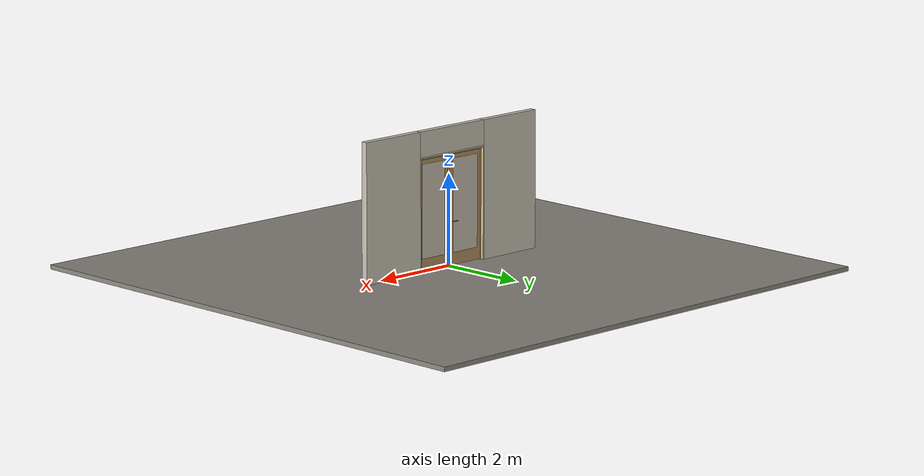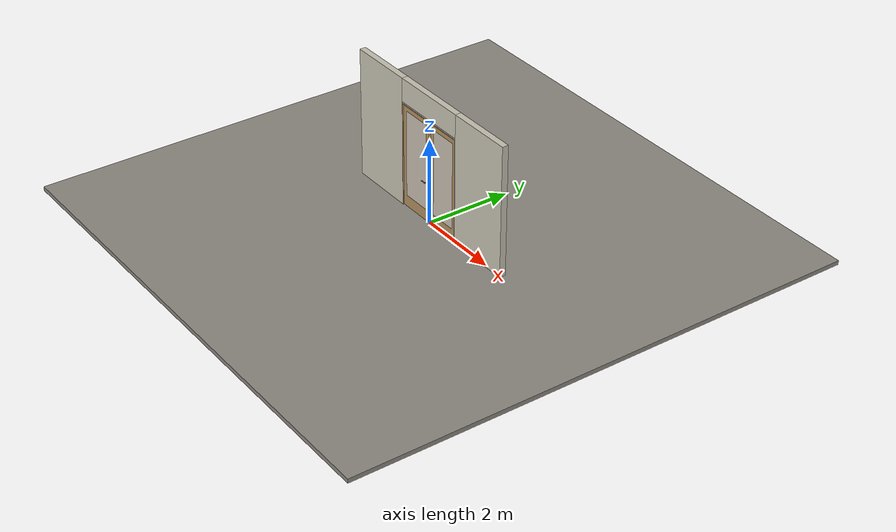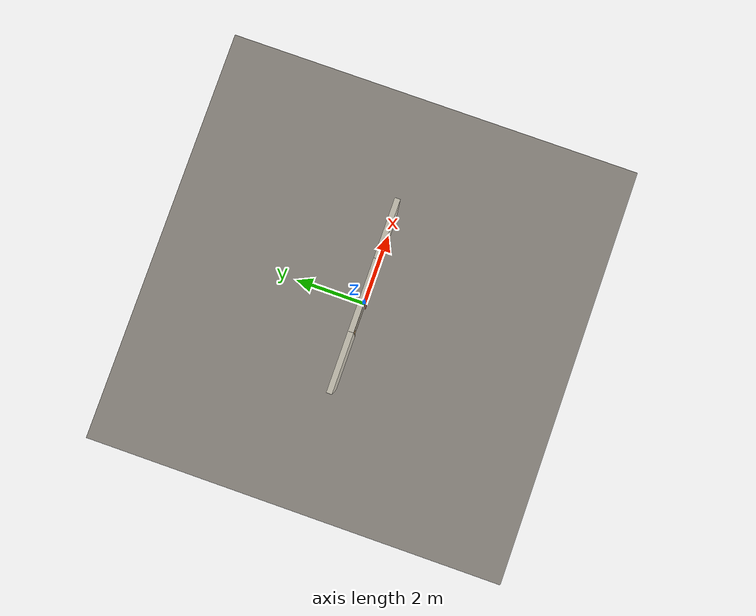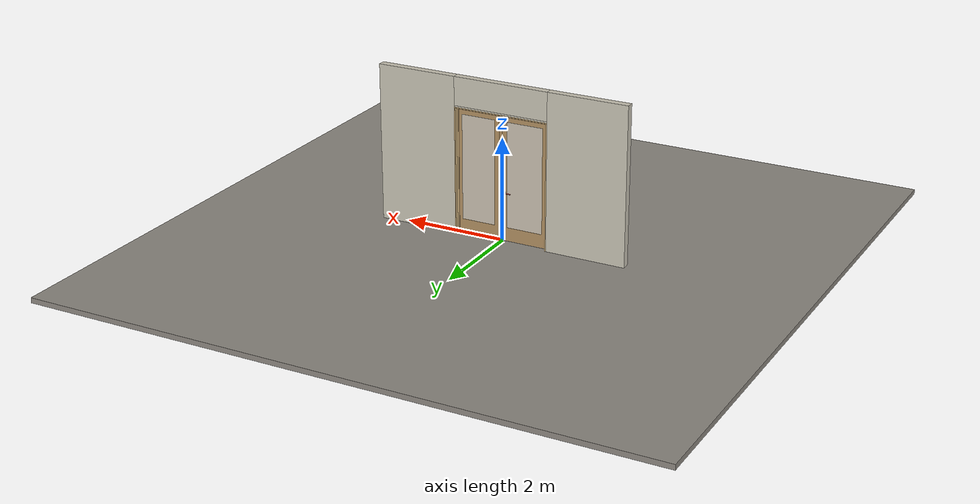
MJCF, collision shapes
<?xml version="1.0" ?>
<mujoco model="db0682_swing_double_minimal">
  <compiler angle="radian" meshdir="../../hardware" texturedir="../../textures" autolimits="true" inertiafromgeom="false"/>
  <option timestep="0.002" integrator="implicitfast" cone="elliptic" impratio="10" noslip_iterations="3">
    <flag multiccd="enable"/>
  </option>
  <size memory="16M"/>
  <default>
    <geom condim="4" solref="0.005 1" solimp="0.95 0.99 0.001"/>
    <joint solreflimit="0.005 1" solimplimit="0.95 0.99 0.001"/>
    <tendon solreflimit="0.005 1"/>
    <equality solref="0.002 1"/>
  </default>
  <visual>
    <headlight ambient="0.4 0.4 0.4" diffuse="0.7 0.7 0.7" specular="0.2 0.2 0.2"/>
    <quality shadowsize="4096"/>
    <map znear="0.01" zfar="60"/>
  </visual>
  <asset>
    <mesh name="lever_f913fc5b7b" file="lever_f913fc5b7b.obj"/>
    <material name="mat_floor" rgba="0.55 0.53 0.5 1" specular="0.2" shininess="0.15" reflectance="0"/>
    <material name="mat_wall" rgba="0.78 0.76 0.7 1" specular="0.2" shininess="0.1" reflectance="0"/>
    <material name="mat_leaf_a" rgba="0.686 0.557 0.377 1" specular="0.2" shininess="0.45" reflectance="0"/>
    <material name="mat_glass" rgba="0.9 0.93 0.95 0.6" specular="0.2" shininess="0.5" reflectance="0.1"/>
    <material name="mat_hinge" rgba="0.65 0.66 0.68 1" specular="0.74" shininess="0.5" reflectance="0.36"/>
    <material name="mat_op_stainless" rgba="0.75 0.76 0.77 1" specular="0.8" shininess="0.65" reflectance="0.4"/>
    <material name="mat_trim" rgba="0.85 0.66 0.3 1" specular="0.8" shininess="0.75" reflectance="0.4"/>
    <material name="mat_bolt" rgba="0.85 0.66 0.3 1" specular="0.8" shininess="0.75" reflectance="0.4"/>
    <material name="mat_deadbolt" rgba="0.85 0.66 0.3 1" specular="0.8" shininess="0.75" reflectance="0.4"/>
    <material name="mat_leaf_b" rgba="0.686 0.557 0.377 1" specular="0.2" shininess="0.45" reflectance="0"/>
    <material name="mat_frame" rgba="0.82 0.7 0.5 1" specular="0.2" shininess="0.45" reflectance="0"/>
    <texture name="skybox" type="skybox" builtin="gradient" rgb1="0.6 0.7 0.85" rgb2="0.9 0.92 0.95" width="256" height="256"/>
  </asset>
  <worldbody>
    <light name="sun" pos="1.5 -2.5 4" dir="-0.3 0.5 -0.8" directional="true" diffuse="0.8 0.8 0.8" specular="0.3 0.3 0.3" castshadow="true"/>
    <light name="fill" pos="-1.5 2.5 3" dir="0.3 -0.5 -0.7" directional="true" diffuse="0.35 0.35 0.4" castshadow="false"/>
    <camera name="robot_view" pos="0 -2.892313 2.043887" xyaxes="1 0 0 0 0.26963 0.962964" fovy="52"/>
    <camera name="far_view" pos="0 2.953313 2.043887" xyaxes="-1 0 0 0 -0.26963 0.962964" fovy="52"/>
    <camera name="iso" pos="-2.221337 -2.424663 2.511538" xyaxes="0.741536 -0.670913 0 0.242917 0.268487 0.932151" fovy="46"/>
    <camera name="detail_handle" pos="0.0045 -0.877 1.245" xyaxes="0.97561 0.219512 0 -0.070934 0.315262 0.94635" fovy="38"/>
    <geom name="floor" type="box" size="6 6 0.05" pos="0 0 -0.05" material="mat_floor" group="0" contype="1" conaffinity="1" friction="0.8 0.005 0.0001" density="2400"/>
    <geom name="wall_left" type="box" size="0.78125 0.0725 1.5255" pos="-1.71875 0.0305 1.5255" material="mat_wall" group="0" contype="1" conaffinity="1" friction="0.6 0.005 0.0001" density="800"/>
    <geom name="wall_right" type="box" size="0.78125 0.0725 1.5255" pos="1.71875 0.0305 1.5255" material="mat_wall" group="0" contype="1" conaffinity="1" friction="0.6 0.005 0.0001" density="800"/>
    <geom name="wall_header" type="box" size="0.9375 0.0725 0.2755" pos="0 0.0305 2.7755" material="mat_wall" group="0" contype="1" conaffinity="1" friction="0.6 0.005 0.0001" density="800"/>
    <geom name="jamb_l" type="box" size="0.0095 0.0725 1.2255" pos="-0.928 0.0305 1.2255" material="mat_frame" group="0" contype="1" conaffinity="1" friction="0.6 0.005 0.0001" density="300"/>
    <geom name="jamb_r" type="box" size="0.0095 0.0725 1.2255" pos="0.928 0.0305 1.2255" material="mat_frame" group="0" contype="1" conaffinity="1" friction="0.6 0.005 0.0001" density="300"/>
    <geom name="jamb_head" type="box" size="0.9375 0.0725 0.0095" pos="0 0.0305 2.4605" material="mat_frame" group="0" contype="1" conaffinity="1" friction="0.6 0.005 0.0001" density="300"/>
    <geom name="head_stud" type="box" size="0.9375 0.0725 0.015" pos="0 0.0305 2.485" material="mat_wall" group="0" contype="1" conaffinity="1" friction="0.6 0.005 0.0001" density="500"/>
    <geom name="stop_l" type="box" size="0.015 0.006 1.2255" pos="-0.9035 0.0285 1.2255" material="mat_frame" group="0" contype="1" conaffinity="1" friction="0.6 0.005 0.0001" density="300"/>
    <geom name="stop_r" type="box" size="0.015 0.006 1.2255" pos="0.9035 0.0285 1.2255" material="mat_frame" group="0" contype="1" conaffinity="1" friction="0.6 0.005 0.0001" density="300"/>
    <geom name="stop_head" type="box" size="0.9185 0.006 0.015" pos="0 0.0285 2.436" material="mat_frame" group="0" contype="1" conaffinity="1" friction="0.6 0.005 0.0001" density="300"/>
    <site name="approach_point" pos="0 -1.5 0" quat="1 0 0 0" size="0.05" rgba="0.2 0.9 0.2 0.5" group="4"/>
    <site name="goal_point" pos="0 1.5 0" quat="1 0 0 0" size="0.05" rgba="0.2 0.9 0.2 0.5" group="4"/>
    <site name="door_plane_center" pos="0 0 1.2255" quat="1 0 0 0" size="0.02" rgba="0.2 0.9 0.2 0.5" group="4"/>
    <site name="approach_point_2" pos="0 -1.5 0" quat="1 0 0 0" size="0.05" rgba="0.2 0.9 0.2 0.5" group="4"/>
    <site name="goal_point_2" pos="0 1.5 0" quat="1 0 0 0" size="0.05" rgba="0.2 0.9 0.2 0.5" group="4"/>
    <site name="door_plane_center_2" pos="0 0 1.2255" quat="1 0 0 0" size="0.02" rgba="0.2 0.9 0.2 0.5" group="4"/>
    <site name="approach_point_3" pos="0 -1.5 0" quat="1 0 0 0" size="0.05" rgba="0.2 0.9 0.2 0.5" group="4"/>
    <site name="goal_point_3" pos="0 1.5 0" quat="1 0 0 0" size="0.05" rgba="0.2 0.9 0.2 0.5" group="4"/>
    <site name="door_plane_center_3" pos="0 0 1.2255" quat="1 0 0 0" size="0.02" rgba="0.2 0.9 0.2 0.5" group="4"/>
    <body name="leaf_a" pos="-0.9185 0 0">
      <inertial pos="0.46 0 1.228358" mass="36.635832" quat="-0.5 0.5 0.5 0.5" diaginertia="2.551471903 18.127167579 20.666814031"/>
      <joint name="leaf_a_hinge" type="hinge" axis="0 0 -1" pos="0.003 -0.029 0" limited="true" range="0 1.570796" solreflimit="0.02 1" damping="0.357281" frictionloss="1.408915" armature="0.02"/>
      <geom name="leaf_a_slab" type="box" size="0.457 0.022 1.219" pos="0.46 0 1.228" material="mat_leaf_a" group="0" contype="1" conaffinity="1" friction="0.35 0.005 0.0001" density="1"/>
      <geom name="leaf_a_glass_0" type="box" size="0.35646 0.0228 1.02396" pos="0.46 0 1.30114" material="mat_glass" group="1" contype="0" conaffinity="0" density="1"/>
      <site name="leaf_a_edge_mid" pos="0.917 0 1.219" quat="1 0 0 0" size="0.02" rgba="0.2 0.9 0.2 0.5" group="4"/>
      <body name="leaf_a_handle" pos="0.847 0 0.965">
        <inertial pos="-0.0423 0 0" mass="0.712286" quat="0.707107 0 0 -0.707107" diaginertia="0.001444644 0.003449344 0.004855619"/>
        <joint name="leaf_a_handle_hinge" type="hinge" axis="0 -1 0" limited="true" range="0 0.65" damping="0.225568" frictionloss="0.051863" stiffness="1" springref="-0.503022" armature="0.01"/>
        <geom name="leaf_a_handle_lever_n" type="mesh" mesh="lever_f913fc5b7b" pos="0 -0.022 0" quat="0.707107 0.707107 0 0" material="mat_op_stainless" group="1" contype="0" conaffinity="0" density="3000"/>
        <geom name="leaf_a_handle_lever_col_n" type="capsule" size="0.0095 0.0555" pos="-0.065 -0.077 0" quat="0.707107 0 -0.707107 0" material="mat_op_stainless" group="3" contype="1" conaffinity="1" rgba="0.8 0.3 0.3 0.25" friction="0.7 0.01 0.0001" density="3000"/>
        <geom name="leaf_a_handle_hub_col_n" type="cylinder" size="0.012 0.022" pos="0 -0.052 0" quat="0.707107 -0.707107 0 0" material="mat_op_stainless" group="3" contype="1" conaffinity="1" rgba="0.8 0.3 0.3 0.25" friction="0.6 0.005 0.0001" density="3000"/>
        <geom name="leaf_a_handle_lever_p" type="mesh" mesh="lever_f913fc5b7b" pos="0 0.022 0" quat="-0.707107 0.707107 0 0" material="mat_op_stainless" group="1" contype="0" conaffinity="0" density="3000"/>
        <geom name="leaf_a_handle_lever_col_p" type="capsule" size="0.0095 0.0555" pos="-0.065 0.077 0" quat="0.707107 0 -0.707107 0" material="mat_op_stainless" group="3" contype="1" conaffinity="1" rgba="0.8 0.3 0.3 0.25" friction="0.7 0.01 0.0001" density="3000"/>
        <geom name="leaf_a_handle_hub_col_p" type="cylinder" size="0.012 0.022" pos="0 0.052 0" quat="0.707107 -0.707107 0 0" material="mat_op_stainless" group="3" contype="1" conaffinity="1" rgba="0.8 0.3 0.3 0.25" friction="0.6 0.005 0.0001" density="3000"/>
        <site name="leaf_a_handle_grip_n" pos="-0.104 -0.077 0" quat="1 0 0 0" size="0.012" rgba="0.2 0.9 0.2 0.5" group="4"/>
        <site name="leaf_a_handle_grip_p" pos="-0.104 0.077 0" quat="1 0 0 0" size="0.012" rgba="0.2 0.9 0.2 0.5" group="4"/>
      </body>
      <body name="leaf_a_latch_bolt" pos="0.917 0 0.965">
        <inertial pos="-0.00865 0 0" mass="0.041419" quat="0.92388 -0.382683 0 0" diaginertia="0.000000798 0.000005598 0.000005598"/>
        <joint name="leaf_a_latch_bolt_slide" type="slide" axis="-1 0 0" limited="true" range="0 0.0127" damping="2" frictionloss="0.3" stiffness="300" springref="-0.008333" armature="0.1"/>
        <geom name="leaf_a_latch_bolt_capsule" type="capsule" size="0.00635 0.015" pos="-0.00865 0 0" quat="0.707107 0 0.707107 0" material="mat_bolt" group="0" contype="1" conaffinity="1" friction="0.2 0.005 0.0001" density="8500"/>
      </body>
    </body>
    <body name="leaf_b" pos="0.9185 0 0">
      <inertial pos="-0.430218 0 1.228334" mass="35.658055" quat="0.5 0.499999 0.500001 -0.5" diaginertia="2.171555559 17.644938625 19.804984365"/>
      <joint name="leaf_b_hinge" type="hinge" axis="0 0 1" pos="-0.003 -0.029 0" limited="true" range="0 0.001" solreflimit="0.02 1" damping="0.357281" frictionloss="1.408915" armature="0.02"/>
      <geom name="leaf_b_edge_965_wall_n" type="box" size="0.03 0.007075 0.0167" pos="-0.887 0.014925 0.965" material="mat_leaf_b" group="0" contype="1" conaffinity="1" friction="0.6 0.005 0.0001" density="1"/>
      <geom name="leaf_b_edge_965_wall_p" type="box" size="0.03 0.008 0.0167" pos="-0.887 -0.01585 0.965" material="mat_leaf_b" group="0" contype="1" conaffinity="1" friction="0.6 0.005 0.0001" density="1"/>
      <geom name="leaf_b_edge_965_ramp" type="box" size="0.03 0.01649 0.0167" pos="-0.882861 -0.026388 0.965" quat="0.977148 0 0 0.212558" material="mat_leaf_b" group="0" contype="1" conaffinity="1" friction="0.12 0.005 0.0001" density="1"/>
      <geom name="leaf_b_edge_965_back" type="box" size="0.02165 0.00785 0.0167" pos="-0.87865 0 0.965" material="mat_leaf_b" group="0" contype="1" conaffinity="1" friction="0.6 0.005 0.0001" density="1"/>
      <geom name="leaf_b_edge_1105_wall_n" type="box" size="0.03 0.00625 0.0155" pos="-0.887 0.01575 1.105" material="mat_leaf_b" group="0" contype="1" conaffinity="1" friction="0.6 0.005 0.0001" density="1"/>
      <geom name="leaf_b_edge_1105_wall_p" type="box" size="0.03 0.00625 0.0155" pos="-0.887 -0.01575 1.105" material="mat_leaf_b" group="0" contype="1" conaffinity="1" friction="0.6 0.005 0.0001" density="1"/>
      <geom name="leaf_b_edge_1105_back" type="box" size="0.0153 0.0095 0.0155" pos="-0.8723 0 1.105" material="mat_leaf_b" group="0" contype="1" conaffinity="1" friction="0.6 0.005 0.0001" density="1"/>
      <geom name="leaf_b_edge_seg_0" type="box" size="0.03 0.022 0.46965" pos="-0.887 0 0.47865" material="mat_leaf_b" group="0" contype="1" conaffinity="1" friction="0.6 0.005 0.0001" density="1"/>
      <geom name="leaf_b_edge_seg_1" type="box" size="0.03 0.022 0.0539" pos="-0.887 0 1.0356" material="mat_leaf_b" group="0" contype="1" conaffinity="1" friction="0.6 0.005 0.0001" density="1"/>
      <geom name="leaf_b_edge_seg_2" type="box" size="0.03 0.022 0.66325" pos="-0.887 0 1.78375" material="mat_leaf_b" group="0" contype="1" conaffinity="1" friction="0.6 0.005 0.0001" density="1"/>
      <geom name="leaf_b_slab" type="box" size="0.427 0.022 1.219" pos="-0.43 0 1.228" material="mat_leaf_b" group="0" contype="1" conaffinity="1" friction="0.35 0.005 0.0001" density="1"/>
      <geom name="leaf_b_glass_0" type="box" size="0.33306 0.0228 1.02396" pos="-0.43 0 1.30114" material="mat_glass" group="1" contype="0" conaffinity="0" density="1"/>
      <site name="leaf_b_edge_mid" pos="-0.917 0 1.219" quat="1 0 0 0" size="0.02" rgba="0.2 0.9 0.2 0.5" group="4"/>
    </body>
  </worldbody>
  <tendon>
    <fixed name="leaf_a_latch_bolt_coupling" limited="true" range="0 10">
      <joint joint="leaf_a_latch_bolt_slide" coef="1"/>
      <joint joint="leaf_a_handle_hinge" coef="-0.02082"/>
    </fixed>
  </tendon>
  <sensor>
    <jointpos name="leaf_a_hinge_pos" joint="leaf_a_hinge"/>
    <jointvel name="leaf_a_hinge_vel" joint="leaf_a_hinge"/>
    <jointpos name="leaf_a_handle_hinge_pos" joint="leaf_a_handle_hinge"/>
    <jointvel name="leaf_a_handle_hinge_vel" joint="leaf_a_handle_hinge"/>
    <jointpos name="leaf_a_latch_bolt_slide_pos" joint="leaf_a_latch_bolt_slide"/>
    <jointvel name="leaf_a_latch_bolt_slide_vel" joint="leaf_a_latch_bolt_slide"/>
    <jointpos name="leaf_b_hinge_pos" joint="leaf_b_hinge"/>
    <jointvel name="leaf_b_hinge_vel" joint="leaf_b_hinge"/>
  </sensor>
</mujoco>
